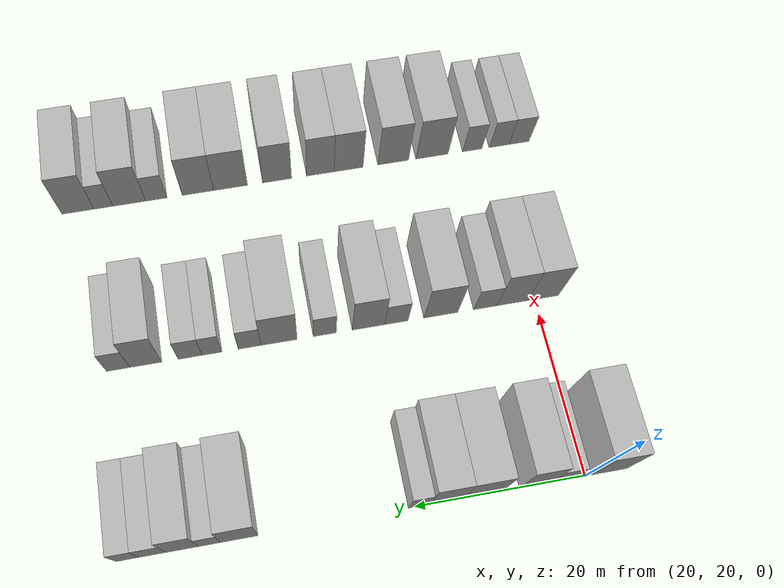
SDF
<sdf version="1.6">
 <world name="default">
  <model name="building_96">
   <static>1</static>
   <pose>25.0000 17.1203 0 0.000000 0.000000 0.000000</pose>
   <link name="link">
    <pose>0 0 4.50 0 0 0</pose>
    <collision name="collision"><geometry><box><size>10.0000 4.1838 9.0000</size></box></geometry></collision>
    <visual name="visual">
     <cast_shadows>0</cast_shadows>
     <geometry><box><size>10.0000 4.1838 9.0000</size></box></geometry>
     <material>
      <script>
       <uri>model://HANNAS_wall/materials/scripts</uri>
       <uri>model://HANNAS_wall/materials/textures</uri>
       <name>vrc/HANNAS_wall</name>
      </script>
     </material>
    </visual>
   </link>
  </model>
  <model name="building_97">
   <static>1</static>
   <pose>25.0000 22.5621 0 0.000000 0.000000 0.000000</pose>
   <link name="link">
    <pose>0 0 3.00 0 0 0</pose>
    <collision name="collision"><geometry><box><size>10.0000 2.6999 6.0000</size></box></geometry></collision>
    <visual name="visual">
     <cast_shadows>0</cast_shadows>
     <geometry><box><size>10.0000 2.6999 6.0000</size></box></geometry>
     <material>
      <script>
       <uri>model://HANNAS_wall/materials/scripts</uri>
       <uri>model://HANNAS_wall/materials/textures</uri>
       <name>vrc/HANNAS_wall</name>
      </script>
     </material>
    </visual>
   </link>
  </model>
  <model name="building_98">
   <static>1</static>
   <pose>25.0000 25.8554 0 0.000000 0.000000 0.000000</pose>
   <link name="link">
    <pose>0 0 4.50 0 0 0</pose>
    <collision name="collision"><geometry><box><size>10.0000 3.8867 9.0000</size></box></geometry></collision>
    <visual name="visual">
     <cast_shadows>0</cast_shadows>
     <geometry><box><size>10.0000 3.8867 9.0000</size></box></geometry>
     <material>
      <script>
       <uri>model://HANNAS_wall/materials/scripts</uri>
       <uri>model://HANNAS_wall/materials/textures</uri>
       <name>vrc/HANNAS_wall</name>
      </script>
     </material>
    </visual>
   </link>
  </model>
  <model name="building_99">
   <static>1</static>
   <pose>25.0000 32.0392 0 0.000000 0.000000 0.000000</pose>
   <link name="link">
    <pose>0 0 4.50 0 0 0</pose>
    <collision name="collision"><geometry><box><size>10.0000 4.4809 9.0000</size></box></geometry></collision>
    <visual name="visual">
     <cast_shadows>0</cast_shadows>
     <geometry><box><size>10.0000 4.4809 9.0000</size></box></geometry>
     <material>
      <script>
       <uri>model://HANNAS_wall/materials/scripts</uri>
       <uri>model://HANNAS_wall/materials/textures</uri>
       <name>vrc/HANNAS_wall</name>
      </script>
     </material>
    </visual>
   </link>
  </model>
  <model name="building_100">
   <static>1</static>
   <pose>25.0000 36.2983 0 0.000000 0.000000 0.000000</pose>
   <link name="link">
    <pose>0 0 4.50 0 0 0</pose>
    <collision name="collision"><geometry><box><size>10.0000 4.0374 9.0000</size></box></geometry></collision>
    <visual name="visual">
     <cast_shadows>0</cast_shadows>
     <geometry><box><size>10.0000 4.0374 9.0000</size></box></geometry>
     <material>
      <script>
       <uri>model://HANNAS_wall/materials/scripts</uri>
       <uri>model://HANNAS_wall/materials/textures</uri>
       <name>vrc/HANNAS_wall</name>
      </script>
     </material>
    </visual>
   </link>
  </model>
  <model name="building_101">
   <static>1</static>
   <pose>25.0000 39.5239 0 0.000000 0.000000 0.000000</pose>
   <link name="link">
    <pose>0 0 3.00 0 0 0</pose>
    <collision name="collision"><geometry><box><size>10.0000 2.4137 6.0000</size></box></geometry></collision>
    <visual name="visual">
     <cast_shadows>0</cast_shadows>
     <geometry><box><size>10.0000 2.4137 6.0000</size></box></geometry>
     <material>
      <script>
       <uri>model://HANNAS_wall/materials/scripts</uri>
       <uri>model://HANNAS_wall/materials/textures</uri>
       <name>vrc/HANNAS_wall</name>
      </script>
     </material>
    </visual>
   </link>
  </model>
  <model name="building_102">
   <static>1</static>
   <pose>25.0000 60.0029 0 0.000000 0.000000 0.000000</pose>
   <link name="link">
    <pose>0 0 4.50 0 0 0</pose>
    <collision name="collision"><geometry><box><size>10.0000 4.1814 9.0000</size></box></geometry></collision>
    <visual name="visual">
     <cast_shadows>0</cast_shadows>
     <geometry><box><size>10.0000 4.1814 9.0000</size></box></geometry>
     <material>
      <script>
       <uri>model://HANNAS_wall/materials/scripts</uri>
       <uri>model://HANNAS_wall/materials/textures</uri>
       <name>vrc/HANNAS_wall</name>
      </script>
     </material>
    </visual>
   </link>
  </model>
  <model name="building_103">
   <static>1</static>
   <pose>25.0000 63.3354 0 0.000000 0.000000 0.000000</pose>
   <link name="link">
    <pose>0 0 3.00 0 0 0</pose>
    <collision name="collision"><geometry><box><size>10.0000 2.4836 6.0000</size></box></geometry></collision>
    <visual name="visual">
     <cast_shadows>0</cast_shadows>
     <geometry><box><size>10.0000 2.4836 6.0000</size></box></geometry>
     <material>
      <script>
       <uri>model://HANNAS_wall/materials/scripts</uri>
       <uri>model://HANNAS_wall/materials/textures</uri>
       <name>vrc/HANNAS_wall</name>
      </script>
     </material>
    </visual>
   </link>
  </model>
  <model name="building_104">
   <static>1</static>
   <pose>25.0000 66.3945 0 0.000000 0.000000 0.000000</pose>
   <link name="link">
    <pose>0 0 4.50 0 0 0</pose>
    <collision name="collision"><geometry><box><size>10.0000 3.6346 9.0000</size></box></geometry></collision>
    <visual name="visual">
     <cast_shadows>0</cast_shadows>
     <geometry><box><size>10.0000 3.6346 9.0000</size></box></geometry>
     <material>
      <script>
       <uri>model://HANNAS_wall/materials/scripts</uri>
       <uri>model://HANNAS_wall/materials/textures</uri>
       <name>vrc/HANNAS_wall</name>
      </script>
     </material>
    </visual>
   </link>
  </model>
  <model name="building_105">
   <static>1</static>
   <pose>25.0000 69.7011 0 0.000000 0.000000 0.000000</pose>
   <link name="link">
    <pose>0 0 3.00 0 0 0</pose>
    <collision name="collision"><geometry><box><size>10.0000 2.9785 6.0000</size></box></geometry></collision>
    <visual name="visual">
     <cast_shadows>0</cast_shadows>
     <geometry><box><size>10.0000 2.9785 6.0000</size></box></geometry>
     <material>
      <script>
       <uri>model://HANNAS_wall/materials/scripts</uri>
       <uri>model://HANNAS_wall/materials/textures</uri>
       <name>vrc/HANNAS_wall</name>
      </script>
     </material>
    </visual>
   </link>
  </model>
  <model name="building_106">
   <static>1</static>
   <pose>25.0000 72.4769 0 0.000000 0.000000 0.000000</pose>
   <link name="link">
    <pose>0 0 3.00 0 0 0</pose>
    <collision name="collision"><geometry><box><size>10.0000 2.5731 6.0000</size></box></geometry></collision>
    <visual name="visual">
     <cast_shadows>0</cast_shadows>
     <geometry><box><size>10.0000 2.5731 6.0000</size></box></geometry>
     <material>
      <script>
       <uri>model://HANNAS_wall/materials/scripts</uri>
       <uri>model://HANNAS_wall/materials/textures</uri>
       <name>vrc/HANNAS_wall</name>
      </script>
     </material>
    </visual>
   </link>
  </model>
  <model name="building_278">
   <static>1</static>
   <pose>47.0000 18.9514 0 0.000000 0.000000 0.000000</pose>
   <link name="link">
    <pose>0 0 4.50 0 0 0</pose>
    <collision name="collision"><geometry><box><size>10.0000 3.9525 9.0000</size></box></geometry></collision>
    <visual name="visual">
     <cast_shadows>0</cast_shadows>
     <geometry><box><size>10.0000 3.9525 9.0000</size></box></geometry>
     <material>
      <script>
       <uri>model://HANNAS_wall/materials/scripts</uri>
       <uri>model://HANNAS_wall/materials/textures</uri>
       <name>vrc/HANNAS_wall</name>
      </script>
     </material>
    </visual>
   </link>
  </model>
  <model name="building_279">
   <static>1</static>
   <pose>47.0000 22.8835 0 0.000000 0.000000 0.000000</pose>
   <link name="link">
    <pose>0 0 4.50 0 0 0</pose>
    <collision name="collision"><geometry><box><size>10.0000 3.9116 9.0000</size></box></geometry></collision>
    <visual name="visual">
     <cast_shadows>0</cast_shadows>
     <geometry><box><size>10.0000 3.9116 9.0000</size></box></geometry>
     <material>
      <script>
       <uri>model://HANNAS_wall/materials/scripts</uri>
       <uri>model://HANNAS_wall/materials/textures</uri>
       <name>vrc/HANNAS_wall</name>
      </script>
     </material>
    </visual>
   </link>
  </model>
  <model name="building_280">
   <static>1</static>
   <pose>47.0000 26.3109 0 0.000000 0.000000 0.000000</pose>
   <link name="link">
    <pose>0 0 3.00 0 0 0</pose>
    <collision name="collision"><geometry><box><size>10.0000 2.9432 6.0000</size></box></geometry></collision>
    <visual name="visual">
     <cast_shadows>0</cast_shadows>
     <geometry><box><size>10.0000 2.9432 6.0000</size></box></geometry>
     <material>
      <script>
       <uri>model://HANNAS_wall/materials/scripts</uri>
       <uri>model://HANNAS_wall/materials/textures</uri>
       <name>vrc/HANNAS_wall</name>
      </script>
     </material>
    </visual>
   </link>
  </model>
  <model name="building_281">
   <static>1</static>
   <pose>47.0000 31.9183 0 0.000000 0.000000 0.000000</pose>
   <link name="link">
    <pose>0 0 4.50 0 0 0</pose>
    <collision name="collision"><geometry><box><size>10.0000 4.2717 9.0000</size></box></geometry></collision>
    <visual name="visual">
     <cast_shadows>0</cast_shadows>
     <geometry><box><size>10.0000 4.2717 9.0000</size></box></geometry>
     <material>
      <script>
       <uri>model://HANNAS_wall/materials/scripts</uri>
       <uri>model://HANNAS_wall/materials/textures</uri>
       <name>vrc/HANNAS_wall</name>
      </script>
     </material>
    </visual>
   </link>
  </model>
  <model name="building_282">
   <static>1</static>
   <pose>47.0000 37.5108 0 0.000000 0.000000 0.000000</pose>
   <link name="link">
    <pose>0 0 3.00 0 0 0</pose>
    <collision name="collision"><geometry><box><size>10.0000 2.9134 6.0000</size></box></geometry></collision>
    <visual name="visual">
     <cast_shadows>0</cast_shadows>
     <geometry><box><size>10.0000 2.9134 6.0000</size></box></geometry>
     <material>
      <script>
       <uri>model://HANNAS_wall/materials/scripts</uri>
       <uri>model://HANNAS_wall/materials/textures</uri>
       <name>vrc/HANNAS_wall</name>
      </script>
     </material>
    </visual>
   </link>
  </model>
  <model name="building_283">
   <static>1</static>
   <pose>47.0000 40.9836 0 0.000000 0.000000 0.000000</pose>
   <link name="link">
    <pose>0 0 4.50 0 0 0</pose>
    <collision name="collision"><geometry><box><size>10.0000 4.0322 9.0000</size></box></geometry></collision>
    <visual name="visual">
     <cast_shadows>0</cast_shadows>
     <geometry><box><size>10.0000 4.0322 9.0000</size></box></geometry>
     <material>
      <script>
       <uri>model://HANNAS_wall/materials/scripts</uri>
       <uri>model://HANNAS_wall/materials/textures</uri>
       <name>vrc/HANNAS_wall</name>
      </script>
     </material>
    </visual>
   </link>
  </model>
  <model name="building_284">
   <static>1</static>
   <pose>47.0000 46.4145 0 0.000000 0.000000 0.000000</pose>
   <link name="link">
    <pose>0 0 3.00 0 0 0</pose>
    <collision name="collision"><geometry><box><size>10.0000 2.8296 6.0000</size></box></geometry></collision>
    <visual name="visual">
     <cast_shadows>0</cast_shadows>
     <geometry><box><size>10.0000 2.8296 6.0000</size></box></geometry>
     <material>
      <script>
       <uri>model://HANNAS_wall/materials/scripts</uri>
       <uri>model://HANNAS_wall/materials/textures</uri>
       <name>vrc/HANNAS_wall</name>
      </script>
     </material>
    </visual>
   </link>
  </model>
  <model name="building_285">
   <static>1</static>
   <pose>47.0000 52.0585 0 0.000000 0.000000 0.000000</pose>
   <link name="link">
    <pose>0 0 4.50 0 0 0</pose>
    <collision name="collision"><geometry><box><size>10.0000 4.4586 9.0000</size></box></geometry></collision>
    <visual name="visual">
     <cast_shadows>0</cast_shadows>
     <geometry><box><size>10.0000 4.4586 9.0000</size></box></geometry>
     <material>
      <script>
       <uri>model://HANNAS_wall/materials/scripts</uri>
       <uri>model://HANNAS_wall/materials/textures</uri>
       <name>vrc/HANNAS_wall</name>
      </script>
     </material>
    </visual>
   </link>
  </model>
  <model name="building_286">
   <static>1</static>
   <pose>47.0000 55.6669 0 0.000000 0.000000 0.000000</pose>
   <link name="link">
    <pose>0 0 3.00 0 0 0</pose>
    <collision name="collision"><geometry><box><size>10.0000 2.7581 6.0000</size></box></geometry></collision>
    <visual name="visual">
     <cast_shadows>0</cast_shadows>
     <geometry><box><size>10.0000 2.7581 6.0000</size></box></geometry>
     <material>
      <script>
       <uri>model://HANNAS_wall/materials/scripts</uri>
       <uri>model://HANNAS_wall/materials/textures</uri>
       <name>vrc/HANNAS_wall</name>
      </script>
     </material>
    </visual>
   </link>
  </model>
  <model name="building_287">
   <static>1</static>
   <pose>47.0000 60.2552 0 0.000000 0.000000 0.000000</pose>
   <link name="link">
    <pose>0 0 3.00 0 0 0</pose>
    <collision name="collision"><geometry><box><size>10.0000 2.4186 6.0000</size></box></geometry></collision>
    <visual name="visual">
     <cast_shadows>0</cast_shadows>
     <geometry><box><size>10.0000 2.4186 6.0000</size></box></geometry>
     <material>
      <script>
       <uri>model://HANNAS_wall/materials/scripts</uri>
       <uri>model://HANNAS_wall/materials/textures</uri>
       <name>vrc/HANNAS_wall</name>
      </script>
     </material>
    </visual>
   </link>
  </model>
  <model name="building_288">
   <static>1</static>
   <pose>47.0000 62.9069 0 0.000000 0.000000 0.000000</pose>
   <link name="link">
    <pose>0 0 3.00 0 0 0</pose>
    <collision name="collision"><geometry><box><size>10.0000 2.8848 6.0000</size></box></geometry></collision>
    <visual name="visual">
     <cast_shadows>0</cast_shadows>
     <geometry><box><size>10.0000 2.8848 6.0000</size></box></geometry>
     <material>
      <script>
       <uri>model://HANNAS_wall/materials/scripts</uri>
       <uri>model://HANNAS_wall/materials/textures</uri>
       <name>vrc/HANNAS_wall</name>
      </script>
     </material>
    </visual>
   </link>
  </model>
  <model name="building_289">
   <static>1</static>
   <pose>47.0000 68.2625 0 0.000000 0.000000 0.000000</pose>
   <link name="link">
    <pose>0 0 4.50 0 0 0</pose>
    <collision name="collision"><geometry><box><size>10.0000 3.8264 9.0000</size></box></geometry></collision>
    <visual name="visual">
     <cast_shadows>0</cast_shadows>
     <geometry><box><size>10.0000 3.8264 9.0000</size></box></geometry>
     <material>
      <script>
       <uri>model://HANNAS_wall/materials/scripts</uri>
       <uri>model://HANNAS_wall/materials/textures</uri>
       <name>vrc/HANNAS_wall</name>
      </script>
     </material>
    </visual>
   </link>
  </model>
  <model name="building_290">
   <static>1</static>
   <pose>47.0000 71.5749 0 0.000000 0.000000 0.000000</pose>
   <link name="link">
    <pose>0 0 3.00 0 0 0</pose>
    <collision name="collision"><geometry><box><size>10.0000 2.7983 6.0000</size></box></geometry></collision>
    <visual name="visual">
     <cast_shadows>0</cast_shadows>
     <geometry><box><size>10.0000 2.7983 6.0000</size></box></geometry>
     <material>
      <script>
       <uri>model://HANNAS_wall/materials/scripts</uri>
       <uri>model://HANNAS_wall/materials/textures</uri>
       <name>vrc/HANNAS_wall</name>
      </script>
     </material>
    </visual>
   </link>
  </model>
  <model name="building_463">
   <static>1</static>
   <pose>69.0000 16.1828 0 0.000000 0.000000 0.000000</pose>
   <link name="link">
    <pose>0 0 3.00 0 0 0</pose>
    <collision name="collision"><geometry><box><size>10.0000 2.7408 6.0000</size></box></geometry></collision>
    <visual name="visual">
     <cast_shadows>0</cast_shadows>
     <geometry><box><size>10.0000 2.7408 6.0000</size></box></geometry>
     <material>
      <script>
       <uri>model://HANNAS_wall/materials/scripts</uri>
       <uri>model://HANNAS_wall/materials/textures</uri>
       <name>vrc/HANNAS_wall</name>
      </script>
     </material>
    </visual>
   </link>
  </model>
  <model name="building_464">
   <static>1</static>
   <pose>69.0000 18.9079 0 0.000000 0.000000 0.000000</pose>
   <link name="link">
    <pose>0 0 3.00 0 0 0</pose>
    <collision name="collision"><geometry><box><size>10.0000 2.7094 6.0000</size></box></geometry></collision>
    <visual name="visual">
     <cast_shadows>0</cast_shadows>
     <geometry><box><size>10.0000 2.7094 6.0000</size></box></geometry>
     <material>
      <script>
       <uri>model://HANNAS_wall/materials/scripts</uri>
       <uri>model://HANNAS_wall/materials/textures</uri>
       <name>vrc/HANNAS_wall</name>
      </script>
     </material>
    </visual>
   </link>
  </model>
  <model name="building_465">
   <static>1</static>
   <pose>69.0000 22.5750 0 0.000000 0.000000 0.000000</pose>
   <link name="link">
    <pose>0 0 3.00 0 0 0</pose>
    <collision name="collision"><geometry><box><size>10.0000 2.6248 6.0000</size></box></geometry></collision>
    <visual name="visual">
     <cast_shadows>0</cast_shadows>
     <geometry><box><size>10.0000 2.6248 6.0000</size></box></geometry>
     <material>
      <script>
       <uri>model://HANNAS_wall/materials/scripts</uri>
       <uri>model://HANNAS_wall/materials/textures</uri>
       <name>vrc/HANNAS_wall</name>
      </script>
     </material>
    </visual>
   </link>
  </model>
  <model name="building_466">
   <static>1</static>
   <pose>69.0000 28.0635 0 0.000000 0.000000 0.000000</pose>
   <link name="link">
    <pose>0 0 4.50 0 0 0</pose>
    <collision name="collision"><geometry><box><size>10.0000 4.3521 9.0000</size></box></geometry></collision>
    <visual name="visual">
     <cast_shadows>0</cast_shadows>
     <geometry><box><size>10.0000 4.3521 9.0000</size></box></geometry>
     <material>
      <script>
       <uri>model://HANNAS_wall/materials/scripts</uri>
       <uri>model://HANNAS_wall/materials/textures</uri>
       <name>vrc/HANNAS_wall</name>
      </script>
     </material>
    </visual>
   </link>
  </model>
  <model name="building_467">
   <static>1</static>
   <pose>69.0000 33.3014 0 0.000000 0.000000 0.000000</pose>
   <link name="link">
    <pose>0 0 4.50 0 0 0</pose>
    <collision name="collision"><geometry><box><size>10.0000 4.1238 9.0000</size></box></geometry></collision>
    <visual name="visual">
     <cast_shadows>0</cast_shadows>
     <geometry><box><size>10.0000 4.1238 9.0000</size></box></geometry>
     <material>
      <script>
       <uri>model://HANNAS_wall/materials/scripts</uri>
       <uri>model://HANNAS_wall/materials/textures</uri>
       <name>vrc/HANNAS_wall</name>
      </script>
     </material>
    </visual>
   </link>
  </model>
  <model name="building_468">
   <static>1</static>
   <pose>69.0000 39.2917 0 0.000000 0.000000 0.000000</pose>
   <link name="link">
    <pose>0 0 4.50 0 0 0</pose>
    <collision name="collision"><geometry><box><size>10.0000 3.8569 9.0000</size></box></geometry></collision>
    <visual name="visual">
     <cast_shadows>0</cast_shadows>
     <geometry><box><size>10.0000 3.8569 9.0000</size></box></geometry>
     <material>
      <script>
       <uri>model://HANNAS_wall/materials/scripts</uri>
       <uri>model://HANNAS_wall/materials/textures</uri>
       <name>vrc/HANNAS_wall</name>
      </script>
     </material>
    </visual>
   </link>
  </model>
  <model name="building_469">
   <static>1</static>
   <pose>69.0000 43.0633 0 0.000000 0.000000 0.000000</pose>
   <link name="link">
    <pose>0 0 4.50 0 0 0</pose>
    <collision name="collision"><geometry><box><size>10.0000 3.6863 9.0000</size></box></geometry></collision>
    <visual name="visual">
     <cast_shadows>0</cast_shadows>
     <geometry><box><size>10.0000 3.6863 9.0000</size></box></geometry>
     <material>
      <script>
       <uri>model://HANNAS_wall/materials/scripts</uri>
       <uri>model://HANNAS_wall/materials/textures</uri>
       <name>vrc/HANNAS_wall</name>
      </script>
     </material>
    </visual>
   </link>
  </model>
  <model name="building_470">
   <static>1</static>
   <pose>69.0000 48.8218 0 0.000000 0.000000 0.000000</pose>
   <link name="link">
    <pose>0 0 4.50 0 0 0</pose>
    <collision name="collision"><geometry><box><size>10.0000 3.8307 9.0000</size></box></geometry></collision>
    <visual name="visual">
     <cast_shadows>0</cast_shadows>
     <geometry><box><size>10.0000 3.8307 9.0000</size></box></geometry>
     <material>
      <script>
       <uri>model://HANNAS_wall/materials/scripts</uri>
       <uri>model://HANNAS_wall/materials/textures</uri>
       <name>vrc/HANNAS_wall</name>
      </script>
     </material>
    </visual>
   </link>
  </model>
  <model name="building_471">
   <static>1</static>
   <pose>69.0000 54.9603 0 0.000000 0.000000 0.000000</pose>
   <link name="link">
    <pose>0 0 4.50 0 0 0</pose>
    <collision name="collision"><geometry><box><size>10.0000 4.4464 9.0000</size></box></geometry></collision>
    <visual name="visual">
     <cast_shadows>0</cast_shadows>
     <geometry><box><size>10.0000 4.4464 9.0000</size></box></geometry>
     <material>
      <script>
       <uri>model://HANNAS_wall/materials/scripts</uri>
       <uri>model://HANNAS_wall/materials/textures</uri>
       <name>vrc/HANNAS_wall</name>
      </script>
     </material>
    </visual>
   </link>
  </model>
  <model name="building_472">
   <static>1</static>
   <pose>69.0000 59.2427 0 0.000000 0.000000 0.000000</pose>
   <link name="link">
    <pose>0 0 4.50 0 0 0</pose>
    <collision name="collision"><geometry><box><size>10.0000 4.1184 9.0000</size></box></geometry></collision>
    <visual name="visual">
     <cast_shadows>0</cast_shadows>
     <geometry><box><size>10.0000 4.1184 9.0000</size></box></geometry>
     <material>
      <script>
       <uri>model://HANNAS_wall/materials/scripts</uri>
       <uri>model://HANNAS_wall/materials/textures</uri>
       <name>vrc/HANNAS_wall</name>
      </script>
     </material>
    </visual>
   </link>
  </model>
  <model name="building_473">
   <static>1</static>
   <pose>69.0000 64.6876 0 0.000000 0.000000 0.000000</pose>
   <link name="link">
    <pose>0 0 3.00 0 0 0</pose>
    <collision name="collision"><geometry><box><size>10.0000 2.7713 6.0000</size></box></geometry></collision>
    <visual name="visual">
     <cast_shadows>0</cast_shadows>
     <geometry><box><size>10.0000 2.7713 6.0000</size></box></geometry>
     <material>
      <script>
       <uri>model://HANNAS_wall/materials/scripts</uri>
       <uri>model://HANNAS_wall/materials/textures</uri>
       <name>vrc/HANNAS_wall</name>
      </script>
     </material>
    </visual>
   </link>
  </model>
  <model name="building_474">
   <static>1</static>
   <pose>69.0000 68.1983 0 0.000000 0.000000 0.000000</pose>
   <link name="link">
    <pose>0 0 4.50 0 0 0</pose>
    <collision name="collision"><geometry><box><size>10.0000 4.2503 9.0000</size></box></geometry></collision>
    <visual name="visual">
     <cast_shadows>0</cast_shadows>
     <geometry><box><size>10.0000 4.2503 9.0000</size></box></geometry>
     <material>
      <script>
       <uri>model://HANNAS_wall/materials/scripts</uri>
       <uri>model://HANNAS_wall/materials/textures</uri>
       <name>vrc/HANNAS_wall</name>
      </script>
     </material>
    </visual>
   </link>
  </model>
  <model name="building_475">
   <static>1</static>
   <pose>69.0000 71.5376 0 0.000000 0.000000 0.000000</pose>
   <link name="link">
    <pose>0 0 3.00 0 0 0</pose>
    <collision name="collision"><geometry><box><size>10.0000 2.4282 6.0000</size></box></geometry></collision>
    <visual name="visual">
     <cast_shadows>0</cast_shadows>
     <geometry><box><size>10.0000 2.4282 6.0000</size></box></geometry>
     <material>
      <script>
       <uri>model://HANNAS_wall/materials/scripts</uri>
       <uri>model://HANNAS_wall/materials/textures</uri>
       <name>vrc/HANNAS_wall</name>
      </script>
     </material>
    </visual>
   </link>
  </model>
  <model name="building_476">
   <static>1</static>
   <pose>69.0000 74.8098 0 0.000000 0.000000 0.000000</pose>
   <link name="link">
    <pose>0 0 4.50 0 0 0</pose>
    <collision name="collision"><geometry><box><size>10.0000 4.1162 9.0000</size></box></geometry></collision>
    <visual name="visual">
     <cast_shadows>0</cast_shadows>
     <geometry><box><size>10.0000 4.1162 9.0000</size></box></geometry>
     <material>
      <script>
       <uri>model://HANNAS_wall/materials/scripts</uri>
       <uri>model://HANNAS_wall/materials/textures</uri>
       <name>vrc/HANNAS_wall</name>
      </script>
     </material>
    </visual>
   </link>
  </model>
 </world>
</sdf>
